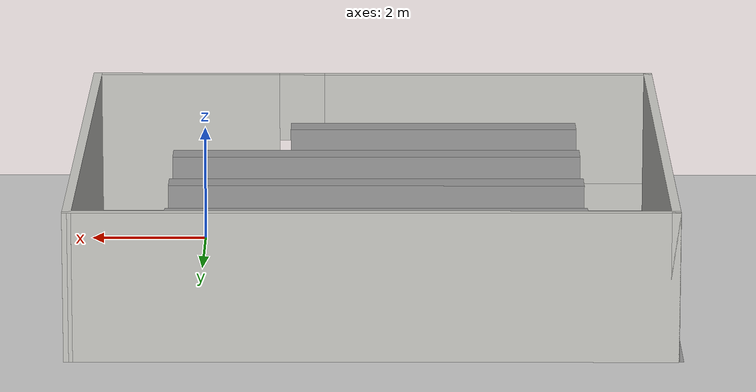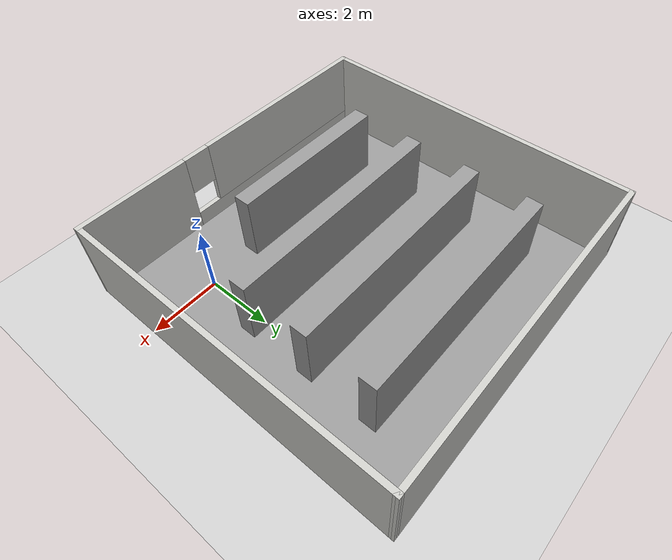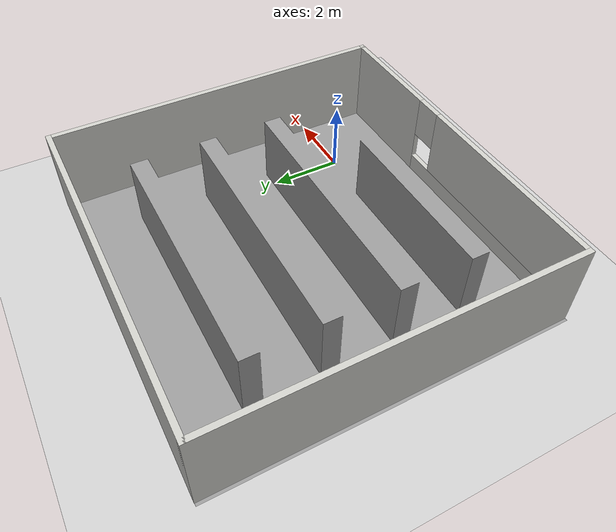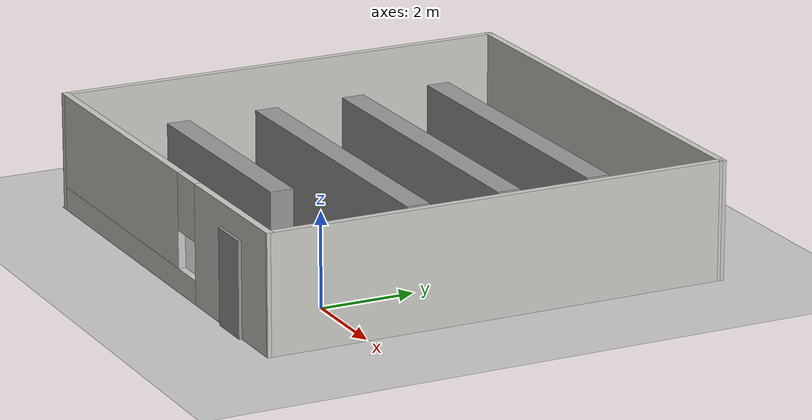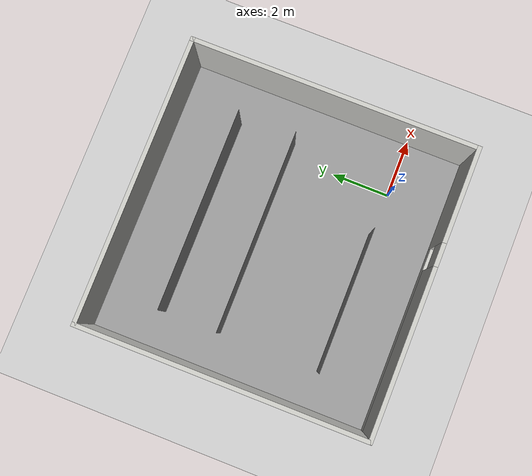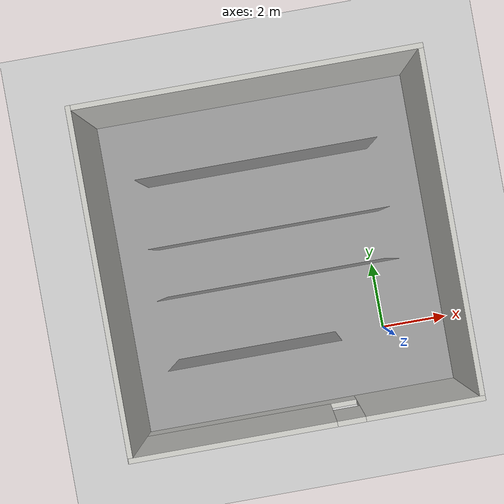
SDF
<sdf version="1.7">
 <world name="default">
  <light name="sun" type="directional">
   <pose>0 0 10 0 -0 0</pose>
   <diffuse>0.8 0.8 0.8 1</diffuse>
   <specular>0.2 0.2 0.2 1</specular>
   <attenuation>
    <range>1000</range>
    <constant>0.9</constant>
    <linear>0.01</linear>
    <quadratic>0.001</quadratic>
   </attenuation>
   <direction>-0.5 0.1 -0.9</direction>
   <spot><inner_angle>0</inner_angle><outer_angle>0</outer_angle><falloff>0</falloff></spot>
  </light>
  <model name="ground_plane">
   <static>1</static>
   <link name="link">
    <collision name="collision">
     <geometry><plane><normal>0 0 1</normal><size>100 100</size></plane></geometry>
     <surface><friction><ode><mu>100</mu><mu2>50</mu2></ode></friction></surface>
    </collision>
    <visual name="visual">
     <cast_shadows>0</cast_shadows>
     <geometry><plane><normal>0 0 1</normal><size>100 100</size></plane></geometry>
     <material>
      <script><uri>file://media/materials/scripts/gazebo.material</uri><name>Gazebo/Grey</name></script>
     </material>
    </visual>
   </link>
  </model>
  <gravity>0 0 -9.8</gravity>
  <magnetic_field>6e-06 2.3e-05 -4.2e-05</magnetic_field>
  <atmosphere type="adiabatic"/>
  <physics type="ode">
   <max_step_size>0.001</max_step_size>
   <real_time_factor>1</real_time_factor>
   <real_time_update_rate>1000</real_time_update_rate>
  </physics>
  <scene><ambient>0.4 0.4 0.4 1</ambient><background>0.7 0.7 0.7 1</background><shadows>1</shadows></scene>
  <audio><device>default</device></audio>
  <spherical_coordinates>
   <surface_model>EARTH_WGS84</surface_model>
   <latitude_deg>0</latitude_deg>
   <longitude_deg>0</longitude_deg>
   <elevation>0</elevation>
   <heading_deg>0</heading_deg>
  </spherical_coordinates>
  <model name="ground">
   <link name="link_0">
    <inertial>
     <mass>1</mass>
     <inertia>
      <ixx>0.166667</ixx>
      <ixy>0</ixy>
      <ixz>0</ixz>
      <iyy>0.166667</iyy>
      <iyz>0</iyz>
      <izz>0.166667</izz>
     </inertia>
    </inertial>
    <pose>-1e-06 -1e-06 0 0 -0 0</pose>
    <visual name="visual">
     <geometry>
      <mesh>
       <uri>/home/yk/Desktop/III-Robot-ROS2/src/bot_description/blender/ground.dae</uri>
       <scale>1 1 1</scale>
      </mesh>
     </geometry>
     <material>
      <lighting>1</lighting>
      <script><uri>file://media/materials/scripts/gazebo.material</uri><name>Gazebo/Grey</name></script>
      <shader type="pixel"/>
     </material>
    </visual>
    <collision name="collision">
     <geometry>
      <mesh>
       <uri>/home/yk/Desktop/III-Robot-ROS2/src/bot_description/blender/ground.dae</uri>
       <scale>1 1 1</scale>
      </mesh>
     </geometry>
     <surface>
      <friction>
       <ode><mu>1</mu><mu2>1</mu2><fdir1>0 0 0</fdir1><slip1>0</slip1><slip2>0</slip2></ode>
       <torsional>
        <coefficient>1</coefficient>
        <patch_radius>0</patch_radius>
        <surface_radius>0</surface_radius>
        <use_patch_radius>1</use_patch_radius>
        <ode><slip>0</slip></ode>
       </torsional>
      </friction>
      <bounce><restitution_coefficient>0</restitution_coefficient><threshold>1e+06</threshold></bounce>
      <contact>
       <collide_without_contact>0</collide_without_contact>
       <collide_without_contact_bitmask>1</collide_without_contact_bitmask>
       <collide_bitmask>1</collide_bitmask>
       <ode>
        <soft_cfm>0</soft_cfm>
        <soft_erp>0.2</soft_erp>
        <kp>1e+13</kp>
        <kd>1</kd>
        <max_vel>0.01</max_vel>
        <min_depth>0</min_depth>
       </ode>
       <bullet>
        <split_impulse>1</split_impulse>
        <split_impulse_penetration_threshold>-0.01</split_impulse_penetration_threshold>
        <soft_cfm>0</soft_cfm>
        <soft_erp>0.2</soft_erp>
        <kp>1e+13</kp>
        <kd>1</kd>
       </bullet>
      </contact>
     </surface>
    </collision>
   </link>
   <static>0</static>
   <pose>-3.00397 2.87204 0 0 -0 0</pose>
  </model>
  <model name="ground_0">
   <pose>-2.92873 2.88 0 0 -0 0</pose>
   <link name="Door_0">
    <collision name="Door_0_Collision">
     <geometry><box><size>0.9 0.17 2</size></box></geometry>
     <pose>0 0 1 0 -0 0</pose>
    </collision>
    <visual name="Door_0_Visual">
     <pose>0 0 1 0 -0 0</pose>
     <geometry><box><size>0.9 0.17 2</size></box></geometry>
     <material>
      <script><uri>file://media/materials/scripts/gazebo.material</uri><name>Gazebo/Grey</name></script>
     </material>
    </visual>
    <pose>3.36872 -4.98 0 0 -0 0</pose>
   </link>
   <link name="Wall_3">
    <pose>-5e-05 -4.925 0 0 -0 3.14159</pose>
    <visual name="Wall_3_Visual_0">
     <pose>-3.32185 0 1.25 0 -0 0</pose>
     <geometry><box><size>3.32985 0.15 2.5</size></box></geometry>
     <material>
      <script><uri>file://media/materials/scripts/gazebo.material</uri><name>Gazebo/CeilingTiled</name></script>
      <ambient>1 1 1 1</ambient>
     </material>
     <meta><layer>0</layer></meta>
    </visual>
    <collision name="Wall_3_Collision_0">
     <geometry><box><size>3.32985 0.15 2.5</size></box></geometry>
     <pose>-3.32185 0 1.25 0 -0 0</pose>
    </collision>
    <visual name="Wall_3_Visual_1">
     <pose>1.66492 0 0.25 0 -0 0</pose>
     <geometry><box><size>6.6437 0.15 0.5</size></box></geometry>
     <material>
      <script><uri>file://media/materials/scripts/gazebo.material</uri><name>Gazebo/CeilingTiled</name></script>
      <ambient>1 1 1 1</ambient>
     </material>
     <meta><layer>0</layer></meta>
    </visual>
    <collision name="Wall_3_Collision_1">
     <geometry><box><size>6.6437 0.15 0.5</size></box></geometry>
     <pose>1.66492 0 0.25 0 -0 0</pose>
    </collision>
    <visual name="Wall_3_Visual_2">
     <pose>2.06492 0 1.5 0 -0 0</pose>
     <geometry><box><size>5.8437 0.15 2</size></box></geometry>
     <material>
      <script><uri>file://media/materials/scripts/gazebo.material</uri><name>Gazebo/CeilingTiled</name></script>
      <ambient>1 1 1 1</ambient>
     </material>
     <meta><layer>0</layer></meta>
    </visual>
    <collision name="Wall_3_Collision_2">
     <geometry><box><size>5.8437 0.15 2</size></box></geometry>
     <pose>2.06492 0 1.5 0 -0 0</pose>
    </collision>
    <visual name="Wall_3_Visual_3">
     <pose>-1.25693 0 1.9 0 -0 0</pose>
     <geometry><box><size>0.8 0.15 1.2</size></box></geometry>
     <material>
      <script><uri>file://media/materials/scripts/gazebo.material</uri><name>Gazebo/CeilingTiled</name></script>
      <ambient>1 1 1 1</ambient>
     </material>
     <meta><layer>0</layer></meta>
    </visual>
    <collision name="Wall_3_Collision_3">
     <geometry><box><size>0.8 0.15 1.2</size></box></geometry>
     <pose>-1.25693 0 1.9 0 -0 0</pose>
    </collision>
   </link>
   <link name="Wall_5">
    <collision name="Wall_5_Collision">
     <geometry><box><size>10 0.15 2.5</size></box></geometry>
     <pose>0 0 1.25 0 -0 0</pose>
    </collision>
    <visual name="Wall_5_Visual">
     <pose>0 0 1.25 0 -0 0</pose>
     <geometry><box><size>10 0.15 2.5</size></box></geometry>
     <material>
      <script><uri>file://media/materials/scripts/gazebo.material</uri><name>Gazebo/CeilingTiled</name></script>
      <ambient>1 1 1 1</ambient>
     </material>
     <meta><layer>0</layer></meta>
    </visual>
    <pose>-4.92505 0 0 0 -0 1.5708</pose>
   </link>
   <link name="Wall_8">
    <collision name="Wall_8_Collision">
     <geometry><box><size>10 0.15 2.5</size></box></geometry>
     <pose>0 0 1.25 0 -0 0</pose>
    </collision>
    <visual name="Wall_8_Visual">
     <pose>0 0 1.25 0 -0 0</pose>
     <geometry><box><size>10 0.15 2.5</size></box></geometry>
     <material>
      <script><uri>file://media/materials/scripts/gazebo.material</uri><name>Gazebo/CeilingTiled</name></script>
      <ambient>1 1 1 1</ambient>
     </material>
     <meta><layer>0</layer></meta>
    </visual>
    <pose>-5e-05 4.925 0 0 -0 0</pose>
   </link>
   <link name="Wall_9">
    <collision name="Wall_9_Collision">
     <geometry><box><size>10 0.15 2.5</size></box></geometry>
     <pose>0 0 1.25 0 -0 0</pose>
    </collision>
    <visual name="Wall_9_Visual">
     <pose>0 0 1.25 0 -0 0</pose>
     <geometry><box><size>10 0.15 2.5</size></box></geometry>
     <material>
      <script><uri>file://media/materials/scripts/gazebo.material</uri><name>Gazebo/CeilingTiled</name></script>
      <ambient>1 1 1 1</ambient>
     </material>
     <meta><layer>0</layer></meta>
    </visual>
    <pose>4.91834 0 0 0 -0 -1.57214</pose>
   </link>
   <static>1</static>
  </model>
 </world>
</sdf>
